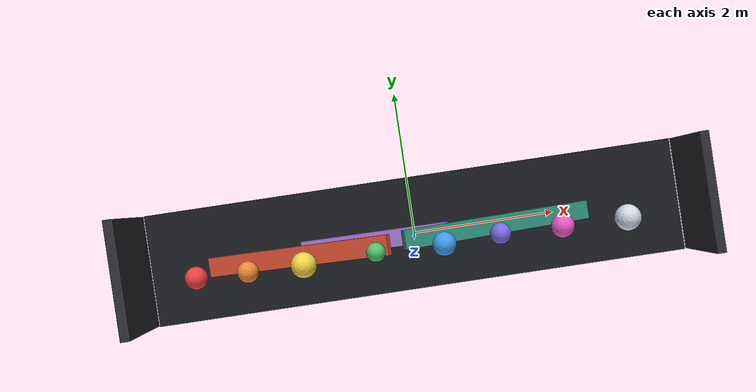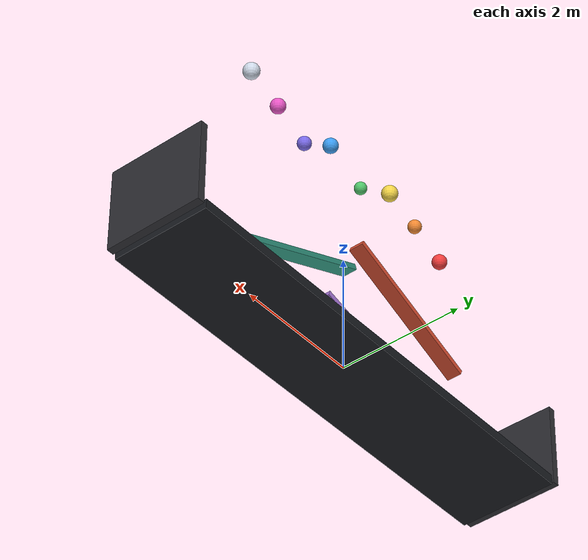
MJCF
<mujoco model="nano_drop_lab">
  <compiler angle="degree" coordinate="local"/>
  <option timestep="0.004" gravity="0 0 -9.81"/>

  <default>
    <geom friction="0.65 0.1 0.1" solref="0.015 1" solimp="0.9 0.95 0.001"/>
  </default>

  <worldbody>
    <geom name="floor" type="box" pos="0 0 -0.08" size="3.8 0.8 0.08" rgba="0.10 0.11 0.13 1"/>
    <geom name="left_wall" type="box" pos="-3.9 0 0.6" size="0.06 0.8 0.7" rgba="0.18 0.18 0.20 1"/>
    <geom name="right_wall" type="box" pos="3.9 0 0.6" size="0.06 0.8 0.7" rgba="0.18 0.18 0.20 1"/>
    <geom name="ramp_a" type="box" pos="-1.45 0 2.00" euler="0 -23 0" size="1.25 0.12 0.045" rgba="0.85 0.31 0.20 1"/>
    <geom name="ramp_b" type="box" pos="1.10 0 1.35" euler="0 24 0" size="1.35 0.12 0.045" rgba="0.18 0.56 0.48 1"/>
    <geom name="ramp_c" type="box" pos="-0.55 0 0.72" euler="0 -16 0" size="1.05 0.12 0.045" rgba="0.65 0.46 0.84 1"/>

    <body name="ball_0" pos="-2.3 0 3.55"><freejoint/><geom type="sphere" size="0.12" mass="0.12" rgba="0.95 0.24 0.24 1"/></body>
    <body name="ball_1" pos="-1.7 0 3.85"><freejoint/><geom type="sphere" size="0.11" mass="0.10" rgba="0.95 0.54 0.20 1"/></body>
    <body name="ball_2" pos="-1.1 0 4.10"><freejoint/><geom type="sphere" size="0.13" mass="0.13" rgba="0.96 0.84 0.28 1"/></body>
    <body name="ball_3" pos="-0.4 0 3.70"><freejoint/><geom type="sphere" size="0.10" mass="0.09" rgba="0.32 0.78 0.42 1"/></body>
    <body name="ball_4" pos="0.3 0 4.05"><freejoint/><geom type="sphere" size="0.12" mass="0.12" rgba="0.24 0.62 0.95 1"/></body>
    <body name="ball_5" pos="0.9 0 3.65"><freejoint/><geom type="sphere" size="0.11" mass="0.10" rgba="0.48 0.42 0.92 1"/></body>
    <body name="ball_6" pos="1.5 0 3.95"><freejoint/><geom type="sphere" size="0.12" mass="0.12" rgba="0.92 0.34 0.78 1"/></body>
    <body name="ball_7" pos="2.1 0 4.20"><freejoint/><geom type="sphere" size="0.13" mass="0.13" rgba="0.82 0.86 0.92 1"/></body>
  </worldbody>
</mujoco>
